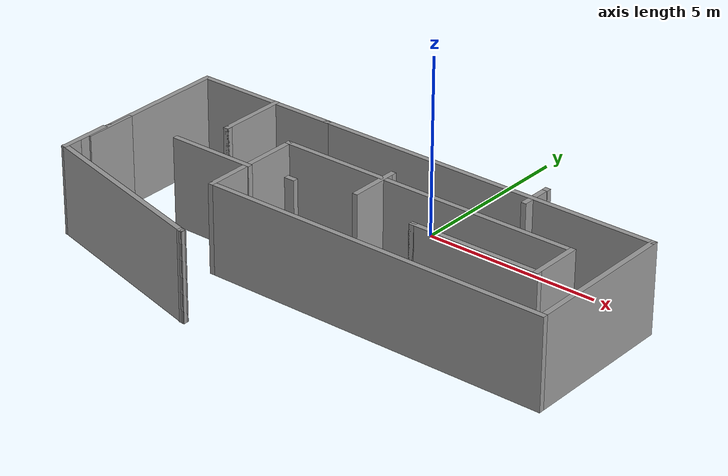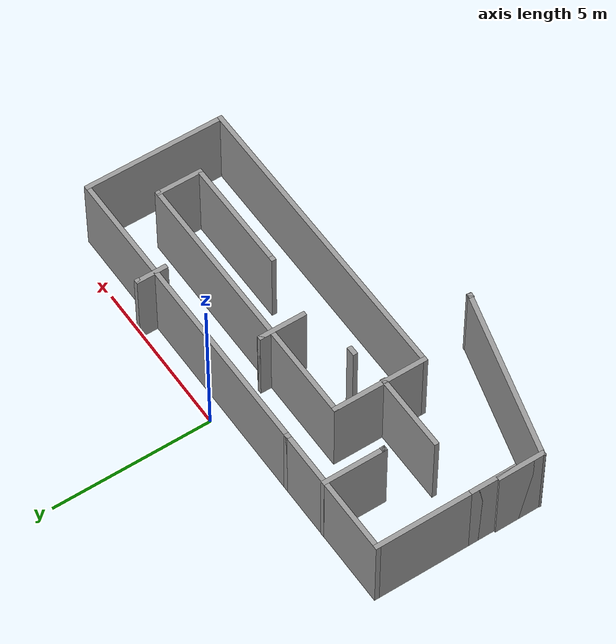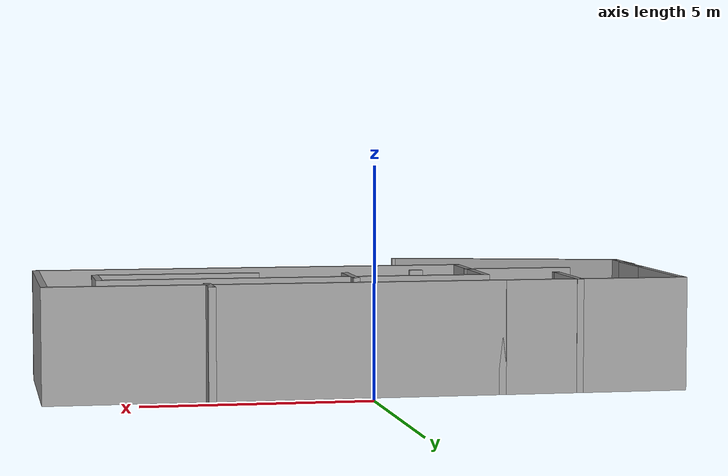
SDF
<?xml version='1.0'?>
<sdf version='1.7'>
  <model name='my_world'>
    <pose>-0.088932 -3.57088 0 0 -0 0</pose>
    <link name='Wall_0'>
      <collision name='Wall_0_Collision'>
        <geometry>
          <box>
            <size>0.16 0.15 2.5</size>
          </box>
        </geometry>
        <pose>0 0 1.25 0 -0 0</pose>
      </collision>
      <visual name='Wall_0_Visual'>
        <pose>0 0 1.25 0 -0 0</pose>
        <geometry>
          <box>
            <size>0.16 0.15 2.5</size>
          </box>
        </geometry>
        <material>
          <script>
            <uri>file://media/materials/scripts/gazebo.material</uri>
            <name>Gazebo/Grey</name>
          </script>
          <ambient>1 1 1 1</ambient>
        </material>
        <meta>
          <layer>0</layer>
        </meta>
      </visual>
      <pose>-2.84607 3.01088 0 0 -0 0</pose>
    </link>
    <link name='Wall_1'>
      <collision name='Wall_1_Collision'>
        <geometry>
          <box>
            <size>10 0.15 2.5</size>
          </box>
        </geometry>
        <pose>0 0 1.25 0 -0 0</pose>
      </collision>
      <visual name='Wall_1_Visual'>
        <pose>0 0 1.25 0 -0 0</pose>
        <geometry>
          <box>
            <size>10 0.15 2.5</size>
          </box>
        </geometry>
        <material>
          <script>
            <uri>file://media/materials/scripts/gazebo.material</uri>
            <name>Gazebo/Grey</name>
          </script>
          <ambient>1 1 1 1</ambient>
        </material>
        <meta>
          <layer>0</layer>
        </meta>
      </visual>
      <pose>2.08393 3.01088 0 0 -0 0</pose>
    </link>
    <link name='Wall_10'>
      <collision name='Wall_10_Collision'>
        <geometry>
          <box>
            <size>0.16 0.15 2.5</size>
          </box>
        </geometry>
        <pose>0 0 1.25 0 -0 0</pose>
      </collision>
      <visual name='Wall_10_Visual'>
        <pose>0 0 1.25 0 -0 0</pose>
        <geometry>
          <box>
            <size>0.16 0.15 2.5</size>
          </box>
        </geometry>
        <material>
          <script>
            <uri>file://media/materials/scripts/gazebo.material</uri>
            <name>Gazebo/Grey</name>
          </script>
          <ambient>1 1 1 1</ambient>
        </material>
        <meta>
          <layer>0</layer>
        </meta>
      </visual>
      <pose>2.16393 0.160876 0 0 -0 0</pose>
    </link>
    <link name='Wall_12'>
      <collision name='Wall_12_Collision'>
        <geometry>
          <box>
            <size>0.3 0.15 2.5</size>
          </box>
        </geometry>
        <pose>0 0 1.25 0 -0 0</pose>
      </collision>
      <visual name='Wall_12_Visual'>
        <pose>0 0 1.25 0 -0 0</pose>
        <geometry>
          <box>
            <size>0.3 0.15 2.5</size>
          </box>
        </geometry>
        <material>
          <script>
            <uri>file://media/materials/scripts/gazebo.material</uri>
            <name>Gazebo/Grey</name>
          </script>
          <ambient>1 1 1 1</ambient>
        </material>
        <meta>
          <layer>0</layer>
        </meta>
      </visual>
      <pose>-1.55044 0.081505 0 0 -0 3.14159</pose>
    </link>
    <link name='Wall_14'>
      <collision name='Wall_14_Collision'>
        <geometry>
          <box>
            <size>1.5 0.15 2.5</size>
          </box>
        </geometry>
        <pose>0 0 1.25 0 -0 0</pose>
      </collision>
      <visual name='Wall_14_Visual'>
        <pose>0 0 1.25 0 -0 0</pose>
        <geometry>
          <box>
            <size>1.5 0.15 2.5</size>
          </box>
        </geometry>
        <material>
          <script>
            <uri>file://media/materials/scripts/gazebo.material</uri>
            <name>Gazebo/Grey</name>
          </script>
          <ambient>1 1 1 1</ambient>
        </material>
        <meta>
          <layer>0</layer>
        </meta>
      </visual>
      <pose>0.164464 1.17971 0 0 -0 1.5708</pose>
    </link>
    <link name='Wall_15'>
      <collision name='Wall_15_Collision'>
        <geometry>
          <box>
            <size>0.15 0.15 2.5</size>
          </box>
        </geometry>
        <pose>0 0 1.25 0 -0 0</pose>
      </collision>
      <visual name='Wall_15_Visual'>
        <pose>0 0 1.25 0 -0 0</pose>
        <geometry>
          <box>
            <size>0.15 0.15 2.5</size>
          </box>
        </geometry>
        <material>
          <script>
            <uri>file://media/materials/scripts/gazebo.material</uri>
            <name>Gazebo/Grey</name>
          </script>
          <ambient>1 1 1 1</ambient>
        </material>
        <meta>
          <layer>0</layer>
        </meta>
      </visual>
      <pose>0.164464 1.85471 0 0 -0 0</pose>
    </link>
    <link name='Wall_17'>
      <collision name='Wall_17_Collision'>
        <geometry>
          <box>
            <size>1 0.15 2.5</size>
          </box>
        </geometry>
        <pose>0 0 1.25 0 -0 0</pose>
      </collision>
      <visual name='Wall_17_Visual'>
        <pose>0 0 1.25 0 -0 0</pose>
        <geometry>
          <box>
            <size>1 0.15 2.5</size>
          </box>
        </geometry>
        <material>
          <script>
            <uri>file://media/materials/scripts/gazebo.material</uri>
            <name>Gazebo/Grey</name>
          </script>
          <ambient>1 1 1 1</ambient>
        </material>
        <meta>
          <layer>0</layer>
        </meta>
      </visual>
      <pose>3.55006 3.1515 0 0 -0 1.5708</pose>
    </link>
    <link name='Wall_18'>
      <collision name='Wall_18_Collision'>
        <geometry>
          <box>
            <size>0.16 0.15 2.5</size>
          </box>
        </geometry>
        <pose>0 0 1.25 0 -0 0</pose>
      </collision>
      <visual name='Wall_18_Visual'>
        <pose>0 0 1.25 0 -0 0</pose>
        <geometry>
          <box>
            <size>0.16 0.15 2.5</size>
          </box>
        </geometry>
        <material>
          <script>
            <uri>file://media/materials/scripts/gazebo.material</uri>
            <name>Gazebo/Grey</name>
          </script>
          <ambient>1 1 1 1</ambient>
        </material>
        <meta>
          <layer>0</layer>
        </meta>
      </visual>
      <pose>3.55506 3.57651 0 0 -0 0</pose>
    </link>
    <link name='Wall_2'>
      <collision name='Wall_2_Collision'>
        <geometry>
          <box>
            <size>4.5 0.15 2.5</size>
          </box>
        </geometry>
        <pose>0 0 1.25 0 -0 0</pose>
      </collision>
      <visual name='Wall_2_Visual'>
        <pose>0 0 1.25 0 -0 0</pose>
        <geometry>
          <box>
            <size>4.5 0.15 2.5</size>
          </box>
        </geometry>
        <material>
          <script>
            <uri>file://media/materials/scripts/gazebo.material</uri>
            <name>Gazebo/Grey</name>
          </script>
          <ambient>1 1 1 1</ambient>
        </material>
        <meta>
          <layer>0</layer>
        </meta>
      </visual>
      <pose>7.00893 0.835876 0 0 -0 -1.5708</pose>
    </link>
    <link name='Wall_20'>
      <collision name='Wall_20_Collision'>
        <geometry>
          <box>
            <size>4.25 0.15 2.5</size>
          </box>
        </geometry>
        <pose>0 0 1.25 0 -0 0</pose>
      </collision>
      <visual name='Wall_20_Visual'>
        <pose>0 0 1.25 0 -0 0</pose>
        <geometry>
          <box>
            <size>4.25 0.15 2.5</size>
          </box>
        </geometry>
        <material>
          <script>
            <uri>file://media/materials/scripts/gazebo.material</uri>
            <name>Gazebo/Grey</name>
          </script>
          <ambient>1 1 1 1</ambient>
        </material>
        <meta>
          <layer>0</layer>
        </meta>
      </visual>
      <pose>-4.89107 3.01088 0 0 -0 3.14159</pose>
    </link>
    <link name='Wall_21'>
      <collision name='Wall_21_Collision'>
        <geometry>
          <box>
            <size>4.5 0.15 2.5</size>
          </box>
        </geometry>
        <pose>0 0 1.25 0 -0 0</pose>
      </collision>
      <visual name='Wall_21_Visual'>
        <pose>0 0 1.25 0 -0 0</pose>
        <geometry>
          <box>
            <size>4.5 0.15 2.5</size>
          </box>
        </geometry>
        <material>
          <script>
            <uri>file://media/materials/scripts/gazebo.material</uri>
            <name>Gazebo/Grey</name>
          </script>
          <ambient>1 1 1 1</ambient>
        </material>
        <meta>
          <layer>0</layer>
        </meta>
      </visual>
      <pose>-6.94107 0.835876 0 0 -0 -1.5708</pose>
    </link>
    <link name='Wall_23'>
      <collision name='Wall_23_Collision'>
        <geometry>
          <box>
            <size>2 0.15 2.5</size>
          </box>
        </geometry>
        <pose>0 0 1.25 0 -0 0</pose>
      </collision>
      <visual name='Wall_23_Visual'>
        <pose>0 0 1.25 0 -0 0</pose>
        <geometry>
          <box>
            <size>2 0.15 2.5</size>
          </box>
        </geometry>
        <material>
          <script>
            <uri>file://media/materials/scripts/gazebo.material</uri>
            <name>Gazebo/Grey</name>
          </script>
          <ambient>1 1 1 1</ambient>
        </material>
        <meta>
          <layer>0</layer>
        </meta>
      </visual>
      <pose>-4.58331 2.09246 0 0 -0 -1.5708</pose>
    </link>
    <link name='Wall_24'>
      <collision name='Wall_24_Collision'>
        <geometry>
          <box>
            <size>0.16 0.15 2.5</size>
          </box>
        </geometry>
        <pose>0 0 1.25 0 -0 0</pose>
      </collision>
      <visual name='Wall_24_Visual'>
        <pose>0 0 1.25 0 -0 0</pose>
        <geometry>
          <box>
            <size>0.16 0.15 2.5</size>
          </box>
        </geometry>
        <material>
          <script>
            <uri>file://media/materials/scripts/gazebo.material</uri>
            <name>Gazebo/Grey</name>
          </script>
          <ambient>1 1 1 1</ambient>
        </material>
        <meta>
          <layer>0</layer>
        </meta>
      </visual>
      <pose>-4.57831 1.16745 0 0 -0 0</pose>
    </link>
    <link name='Wall_25'>
      <collision name='Wall_25_Collision'>
        <geometry>
          <box>
            <size>0.16 0.15 2.5</size>
          </box>
        </geometry>
        <pose>0 0 1.25 0 -0 0</pose>
      </collision>
      <visual name='Wall_25_Visual'>
        <pose>0 0 1.25 0 -0 0</pose>
        <geometry>
          <box>
            <size>0.16 0.15 2.5</size>
          </box>
        </geometry>
        <material>
          <script>
            <uri>file://media/materials/scripts/gazebo.material</uri>
            <name>Gazebo/Grey</name>
          </script>
          <ambient>1 1 1 1</ambient>
        </material>
        <meta>
          <layer>0</layer>
        </meta>
      </visual>
      <pose>-4.57831 1.16745 0 0 -0 3.14159</pose>
    </link>
    <link name='Wall_27'>
      <collision name='Wall_27_Collision'>
        <geometry>
          <box>
            <size>2.5 0.15 2.5</size>
          </box>
        </geometry>
        <pose>0 0 1.25 0 -0 0</pose>
      </collision>
      <visual name='Wall_27_Visual'>
        <pose>0 0 1.25 0 -0 0</pose>
        <geometry>
          <box>
            <size>2.5 0.15 2.5</size>
          </box>
        </geometry>
        <material>
          <script>
            <uri>file://media/materials/scripts/gazebo.material</uri>
            <name>Gazebo/Grey</name>
          </script>
          <ambient>1 1 1 1</ambient>
        </material>
        <meta>
          <layer>0</layer>
        </meta>
      </visual>
      <pose>-3.99021 -0.06397 0 0 -0 0</pose>
    </link>
    <link name='Wall_28'>
      <collision name='Wall_28_Collision'>
        <geometry>
          <box>
            <size>0.15 0.15 2.5</size>
          </box>
        </geometry>
        <pose>0 0 1.25 0 -0 0</pose>
      </collision>
      <visual name='Wall_28_Visual'>
        <pose>0 0 1.25 0 -0 0</pose>
        <geometry>
          <box>
            <size>0.15 0.15 2.5</size>
          </box>
        </geometry>
        <material>
          <script>
            <uri>file://media/materials/scripts/gazebo.material</uri>
            <name>Gazebo/Grey</name>
          </script>
          <ambient>1 1 1 1</ambient>
        </material>
        <meta>
          <layer>0</layer>
        </meta>
      </visual>
      <pose>-2.81521 -0.06397 0 0 -0 0</pose>
    </link>
    <link name='Wall_30'>
      <collision name='Wall_30_Collision'>
        <geometry>
          <box>
            <size>1.5 0.15 2.5</size>
          </box>
        </geometry>
        <pose>0 0 1.25 0 -0 0</pose>
      </collision>
      <visual name='Wall_30_Visual'>
        <pose>0 0 1.25 0 -0 0</pose>
        <geometry>
          <box>
            <size>1.5 0.15 2.5</size>
          </box>
        </geometry>
        <material>
          <script>
            <uri>file://media/materials/scripts/gazebo.material</uri>
            <name>Gazebo/Grey</name>
          </script>
          <ambient>1 1 1 1</ambient>
        </material>
        <meta>
          <layer>0</layer>
        </meta>
      </visual>
      <pose>-6.94107 -0.664124 0 0 -0 1.5708</pose>
    </link>
    <link name='Wall_32'>
      <collision name='Wall_32_Collision'>
        <geometry>
          <box>
            <size>1.5 0.15 2.5</size>
          </box>
        </geometry>
        <pose>0 0 1.25 0 -0 0</pose>
      </collision>
      <visual name='Wall_32_Visual'>
        <pose>0 0 1.25 0 -0 0</pose>
        <geometry>
          <box>
            <size>1.5 0.15 2.5</size>
          </box>
        </geometry>
        <material>
          <script>
            <uri>file://media/materials/scripts/gazebo.material</uri>
            <name>Gazebo/Grey</name>
          </script>
          <ambient>1 1 1 1</ambient>
        </material>
        <meta>
          <layer>0</layer>
        </meta>
      </visual>
      <pose>-6.99208 -1.49997 0 0 -0 1.5708</pose>
    </link>
    <link name='Wall_33'>
      <collision name='Wall_33_Collision'>
        <geometry>
          <box>
            <size>1.5 0.15 2.5</size>
          </box>
        </geometry>
        <pose>0 0 1.25 0 -0 0</pose>
      </collision>
      <visual name='Wall_33_Visual'>
        <pose>0 0 1.25 0 -0 0</pose>
        <geometry>
          <box>
            <size>1.5 0.15 2.5</size>
          </box>
        </geometry>
        <material>
          <script>
            <uri>file://media/materials/scripts/gazebo.material</uri>
            <name>Gazebo/Grey</name>
          </script>
          <ambient>1 1 1 1</ambient>
        </material>
        <meta>
          <layer>0</layer>
        </meta>
      </visual>
      <pose>-6.99208 -1.49997 0 0 -0 -1.5708</pose>
    </link>
    <link name='Wall_34'>
      <collision name='Wall_34_Collision'>
        <geometry>
          <box>
            <size>5.5 0.15 2.5</size>
          </box>
        </geometry>
        <pose>0 0 1.25 0 -0 0</pose>
      </collision>
      <visual name='Wall_34_Visual'>
        <pose>0 0 1.25 0 -0 0</pose>
        <geometry>
          <box>
            <size>5.5 0.15 2.5</size>
          </box>
        </geometry>
        <material>
          <script>
            <uri>file://media/materials/scripts/gazebo.material</uri>
            <name>Gazebo/Grey</name>
          </script>
          <ambient>1 1 1 1</ambient>
        </material>
        <meta>
          <layer>0</layer>
        </meta>
      </visual>
      <pose>-4.40822 -2.86731 0 0 -0 -0.261799</pose>
    </link>
    <link name='Wall_35'>
      <collision name='Wall_35_Collision'>
        <geometry>
          <box>
            <size>0.16 0.15 2.5</size>
          </box>
        </geometry>
        <pose>0 0 1.25 0 -0 0</pose>
      </collision>
      <visual name='Wall_35_Visual'>
        <pose>0 0 1.25 0 -0 0</pose>
        <geometry>
          <box>
            <size>0.16 0.15 2.5</size>
          </box>
        </geometry>
        <material>
          <script>
            <uri>file://media/materials/scripts/gazebo.material</uri>
            <name>Gazebo/Grey</name>
          </script>
          <ambient>1 1 1 1</ambient>
        </material>
        <meta>
          <layer>0</layer>
        </meta>
      </visual>
      <pose>-1.81937 -3.55965 0 0 -0 0</pose>
    </link>
    <link name='Wall_4'>
      <collision name='Wall_4_Collision'>
        <geometry>
          <box>
            <size>10 0.15 2.5</size>
          </box>
        </geometry>
        <pose>0 0 1.25 0 -0 0</pose>
      </collision>
      <visual name='Wall_4_Visual'>
        <pose>0 0 1.25 0 -0 0</pose>
        <geometry>
          <box>
            <size>10 0.15 2.5</size>
          </box>
        </geometry>
        <material>
          <script>
            <uri>file://media/materials/scripts/gazebo.material</uri>
            <name>Gazebo/Grey</name>
          </script>
          <ambient>1 1 1 1</ambient>
        </material>
        <meta>
          <layer>0</layer>
        </meta>
      </visual>
      <pose>2.08393 -1.33912 0 0 -0 3.14159</pose>
    </link>
    <link name='Wall_5'>
      <collision name='Wall_5_Collision'>
        <geometry>
          <box>
            <size>3 0.15 2.5</size>
          </box>
        </geometry>
        <pose>0 0 1.25 0 -0 0</pose>
      </collision>
      <visual name='Wall_5_Visual'>
        <pose>0 0 1.25 0 -0 0</pose>
        <geometry>
          <box>
            <size>3 0.15 2.5</size>
          </box>
        </geometry>
        <material>
          <script>
            <uri>file://media/materials/scripts/gazebo.material</uri>
            <name>Gazebo/Grey</name>
          </script>
          <ambient>1 1 1 1</ambient>
        </material>
        <meta>
          <layer>0</layer>
        </meta>
      </visual>
      <pose>-2.84107 0.085876 0 0 -0 1.5708</pose>
    </link>
    <link name='Wall_6'>
      <collision name='Wall_6_Collision'>
        <geometry>
          <box>
            <size>8.75 0.15 2.5</size>
          </box>
        </geometry>
        <pose>0 0 1.25 0 -0 0</pose>
      </collision>
      <visual name='Wall_6_Visual'>
        <pose>0 0 1.25 0 -0 0</pose>
        <geometry>
          <box>
            <size>8.75 0.15 2.5</size>
          </box>
        </geometry>
        <material>
          <script>
            <uri>file://media/materials/scripts/gazebo.material</uri>
            <name>Gazebo/Grey</name>
          </script>
          <ambient>1 1 1 1</ambient>
        </material>
        <meta>
          <layer>0</layer>
        </meta>
      </visual>
      <pose>1.45893 1.51088 0 0 -0 0</pose>
    </link>
    <link name='Wall_7'>
      <collision name='Wall_7_Collision'>
        <geometry>
          <box>
            <size>1.5 0.15 2.5</size>
          </box>
        </geometry>
        <pose>0 0 1.25 0 -0 0</pose>
      </collision>
      <visual name='Wall_7_Visual'>
        <pose>0 0 1.25 0 -0 0</pose>
        <geometry>
          <box>
            <size>1.5 0.15 2.5</size>
          </box>
        </geometry>
        <material>
          <script>
            <uri>file://media/materials/scripts/gazebo.material</uri>
            <name>Gazebo/Grey</name>
          </script>
          <ambient>1 1 1 1</ambient>
        </material>
        <meta>
          <layer>0</layer>
        </meta>
      </visual>
      <pose>5.75893 0.835876 0 0 -0 -1.5708</pose>
    </link>
    <link name='Wall_8'>
      <collision name='Wall_8_Collision'>
        <geometry>
          <box>
            <size>3.75 0.15 2.5</size>
          </box>
        </geometry>
        <pose>0 0 1.25 0 -0 0</pose>
      </collision>
      <visual name='Wall_8_Visual'>
        <pose>0 0 1.25 0 -0 0</pose>
        <geometry>
          <box>
            <size>3.75 0.15 2.5</size>
          </box>
        </geometry>
        <material>
          <script>
            <uri>file://media/materials/scripts/gazebo.material</uri>
            <name>Gazebo/Grey</name>
          </script>
          <ambient>1 1 1 1</ambient>
        </material>
        <meta>
          <layer>0</layer>
        </meta>
      </visual>
      <pose>3.95893 0.160876 0 0 -0 3.14159</pose>
    </link>
    <link name='Wall_9'>
      <collision name='Wall_9_Collision'>
        <geometry>
          <box>
            <size>0.15 0.15 2.5</size>
          </box>
        </geometry>
        <pose>0 0 1.25 0 -0 0</pose>
      </collision>
      <visual name='Wall_9_Visual'>
        <pose>0 0 1.25 0 -0 0</pose>
        <geometry>
          <box>
            <size>0.15 0.15 2.5</size>
          </box>
        </geometry>
        <material>
          <script>
            <uri>file://media/materials/scripts/gazebo.material</uri>
            <name>Gazebo/Grey</name>
          </script>
          <ambient>1 1 1 1</ambient>
        </material>
        <meta>
          <layer>0</layer>
        </meta>
      </visual>
      <pose>2.15893 0.160876 0 0 -0 0</pose>
    </link>
    <static>1</static>
  </model>
</sdf>
